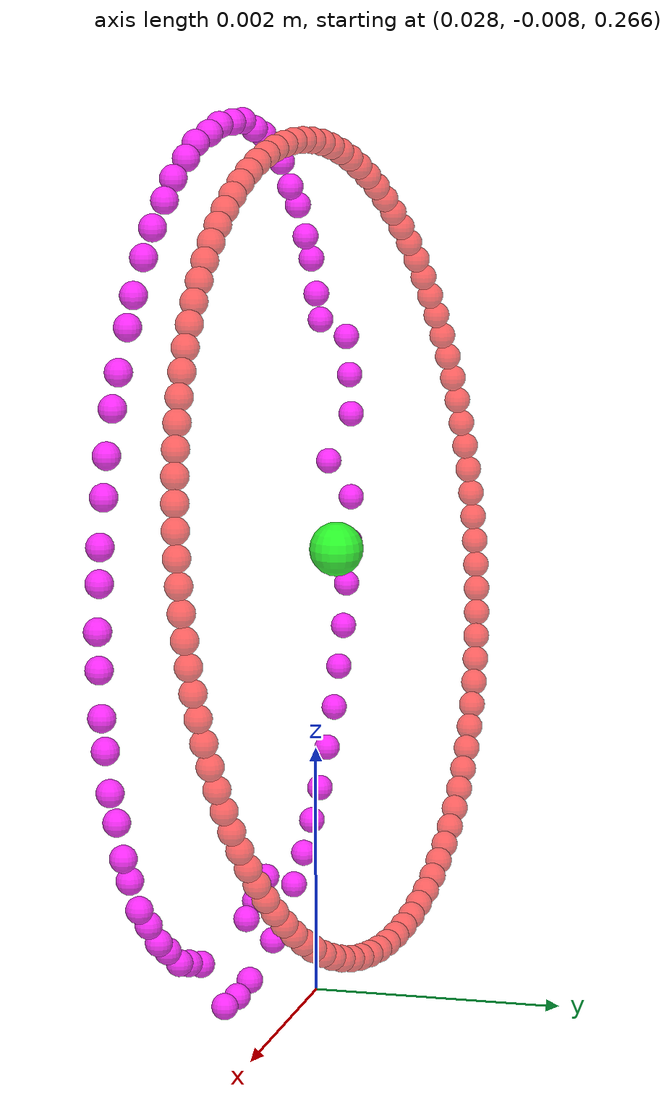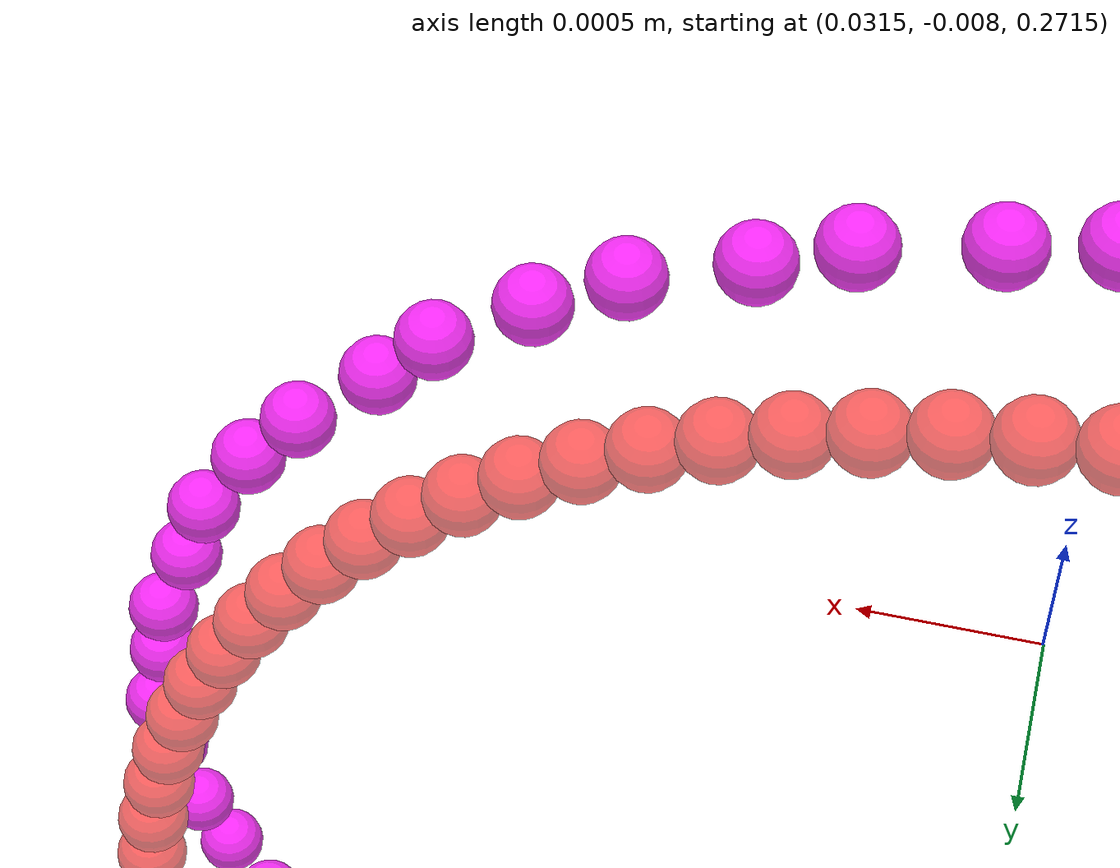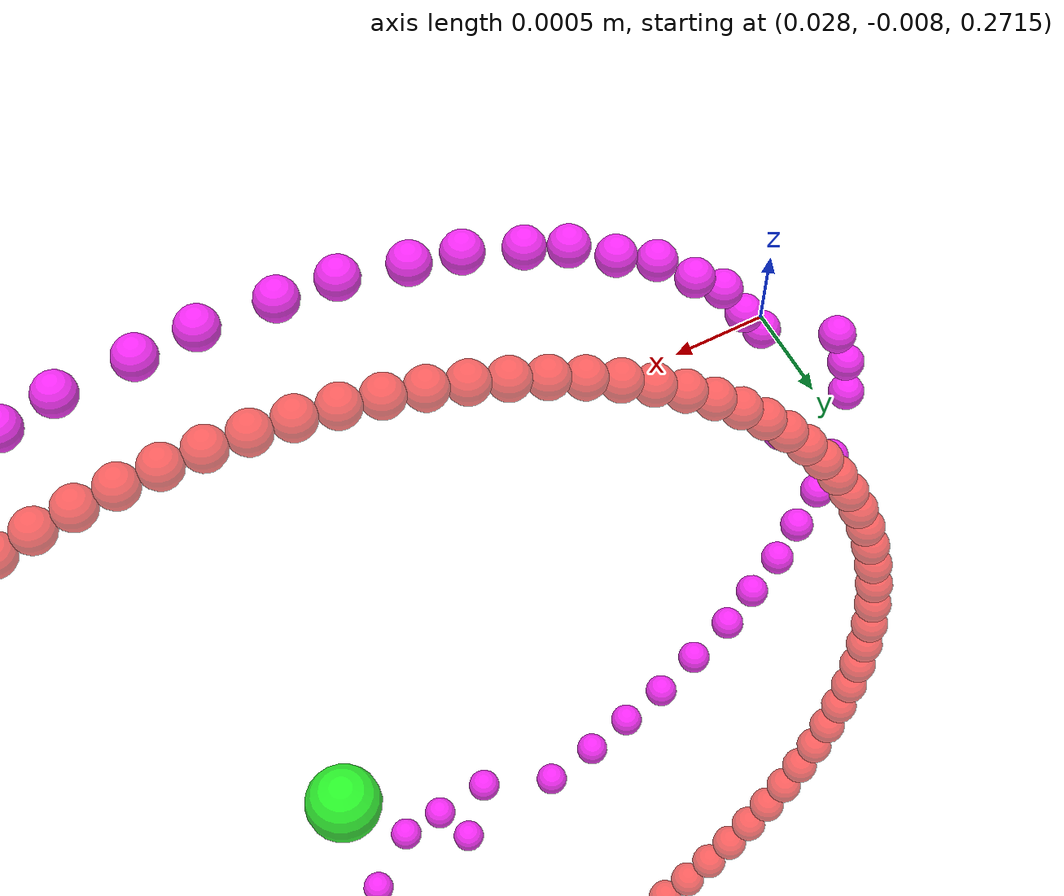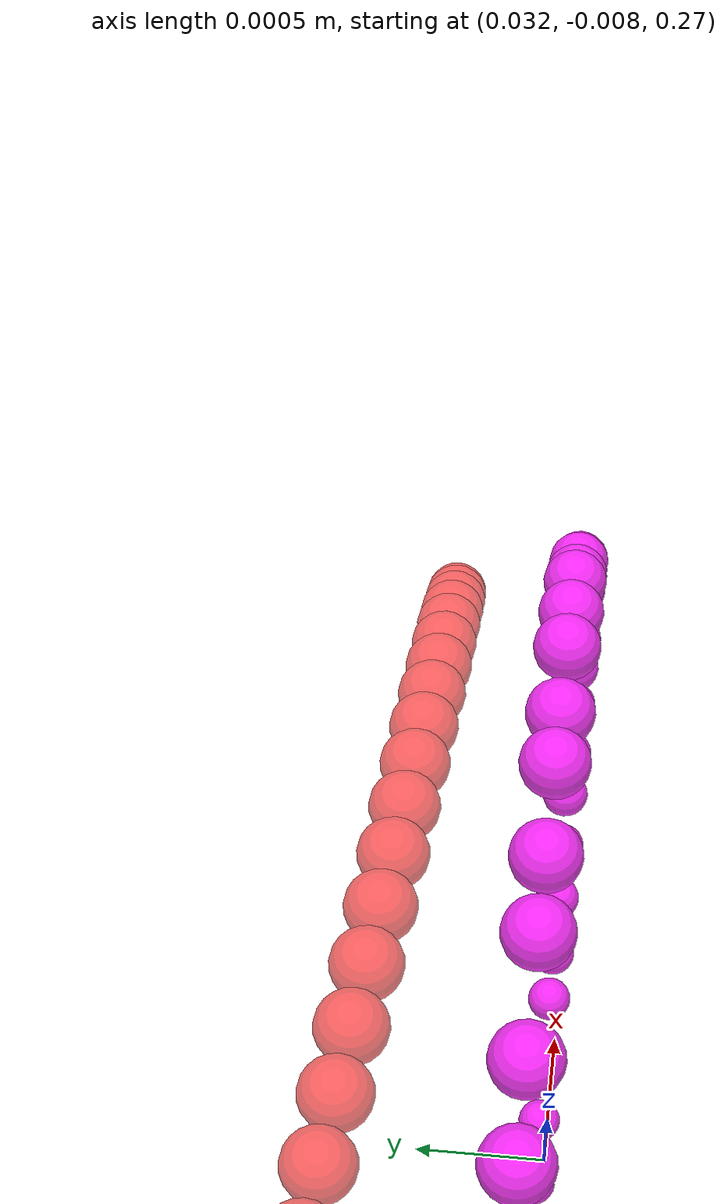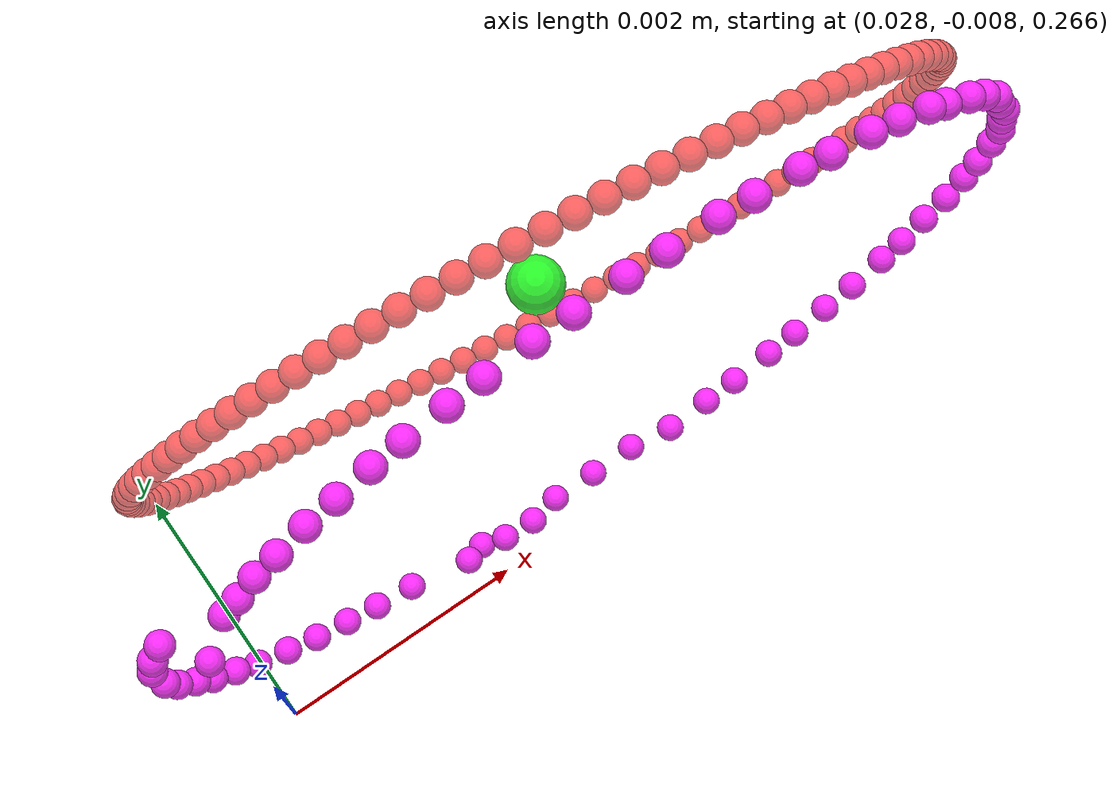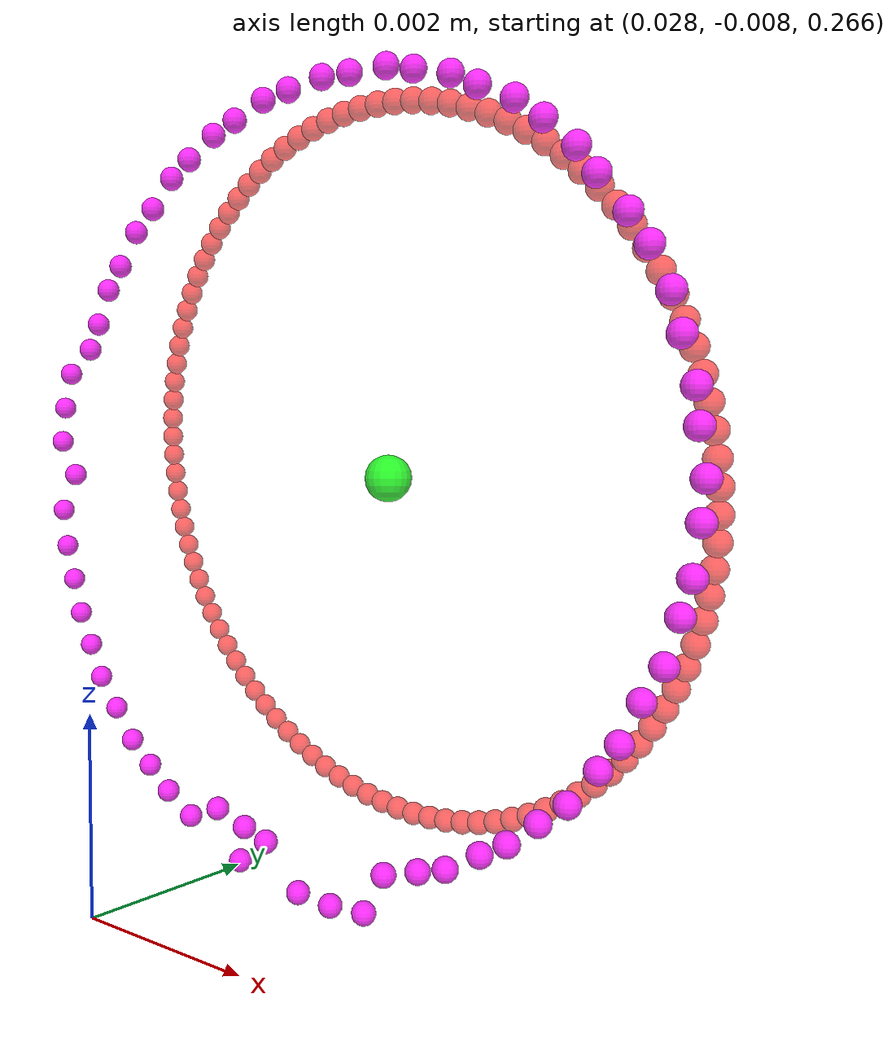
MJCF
<mujoco>
  <worldbody>
    <!-- LENS ANALYSIS VISUALIZATION -->
    <!-- Lens geometric center -->
    <body name="lens_center_marker" pos="0.030893 -0.007080 0.270276">
      <geom name="lens_center_sphere" type="sphere" size="0.0002" rgba="0 1 0 0.8" contype="0" conaffinity="0"/>
    </body>

    <!-- Raw trajectory points (100 points) - RED -->
    <body name="raw_trajectory_point_0" pos="0.030893 -0.007466 0.273251">
      <geom name="raw_traj_marker_0" type="sphere" size="0.0001" rgba="1 0 0 0.6" contype="0" conaffinity="0"/>
    </body>
    <body name="raw_trajectory_point_1" pos="0.031081 -0.007484 0.273243">
      <geom name="raw_traj_marker_1" type="sphere" size="0.0001" rgba="1 0 0 0.6" contype="0" conaffinity="0"/>
    </body>
    <body name="raw_trajectory_point_2" pos="0.031267 -0.007500 0.273223">
      <geom name="raw_traj_marker_2" type="sphere" size="0.0001" rgba="1 0 0 0.6" contype="0" conaffinity="0"/>
    </body>
    <body name="raw_trajectory_point_3" pos="0.031453 -0.007515 0.273192">
      <geom name="raw_traj_marker_3" type="sphere" size="0.0001" rgba="1 0 0 0.6" contype="0" conaffinity="0"/>
    </body>
    <body name="raw_trajectory_point_4" pos="0.031636 -0.007528 0.273148">
      <geom name="raw_traj_marker_4" type="sphere" size="0.0001" rgba="1 0 0 0.6" contype="0" conaffinity="0"/>
    </body>
    <body name="raw_trajectory_point_5" pos="0.031816 -0.007539 0.273094">
      <geom name="raw_traj_marker_5" type="sphere" size="0.0001" rgba="1 0 0 0.6" contype="0" conaffinity="0"/>
    </body>
    <body name="raw_trajectory_point_6" pos="0.031992 -0.007548 0.273028">
      <geom name="raw_traj_marker_6" type="sphere" size="0.0001" rgba="1 0 0 0.6" contype="0" conaffinity="0"/>
    </body>
    <body name="raw_trajectory_point_7" pos="0.032164 -0.007556 0.272952">
      <geom name="raw_traj_marker_7" type="sphere" size="0.0001" rgba="1 0 0 0.6" contype="0" conaffinity="0"/>
    </body>
    <body name="raw_trajectory_point_8" pos="0.032331 -0.007561 0.272865">
      <geom name="raw_traj_marker_8" type="sphere" size="0.0001" rgba="1 0 0 0.6" contype="0" conaffinity="0"/>
    </body>
    <body name="raw_trajectory_point_9" pos="0.032493 -0.007565 0.272768">
      <geom name="raw_traj_marker_9" type="sphere" size="0.0001" rgba="1 0 0 0.6" contype="0" conaffinity="0"/>
    </body>
    <body name="raw_trajectory_point_10" pos="0.032648 -0.007567 0.272661">
      <geom name="raw_traj_marker_10" type="sphere" size="0.0001" rgba="1 0 0 0.6" contype="0" conaffinity="0"/>
    </body>
    <body name="raw_trajectory_point_11" pos="0.032796 -0.007566 0.272544">
      <geom name="raw_traj_marker_11" type="sphere" size="0.0001" rgba="1 0 0 0.6" contype="0" conaffinity="0"/>
    </body>
    <body name="raw_trajectory_point_12" pos="0.032937 -0.007564 0.272419">
      <geom name="raw_traj_marker_12" type="sphere" size="0.0001" rgba="1 0 0 0.6" contype="0" conaffinity="0"/>
    </body>
    <body name="raw_trajectory_point_13" pos="0.033069 -0.007560 0.272285">
      <geom name="raw_traj_marker_13" type="sphere" size="0.0001" rgba="1 0 0 0.6" contype="0" conaffinity="0"/>
    </body>
    <body name="raw_trajectory_point_14" pos="0.033193 -0.007555 0.272143">
      <geom name="raw_traj_marker_14" type="sphere" size="0.0001" rgba="1 0 0 0.6" contype="0" conaffinity="0"/>
    </body>
    <body name="raw_trajectory_point_15" pos="0.033308 -0.007547 0.271994">
      <geom name="raw_traj_marker_15" type="sphere" size="0.0001" rgba="1 0 0 0.6" contype="0" conaffinity="0"/>
    </body>
    <body name="raw_trajectory_point_16" pos="0.033414 -0.007537 0.271838">
      <geom name="raw_traj_marker_16" type="sphere" size="0.0001" rgba="1 0 0 0.6" contype="0" conaffinity="0"/>
    </body>
    <body name="raw_trajectory_point_17" pos="0.033509 -0.007526 0.271676">
      <geom name="raw_traj_marker_17" type="sphere" size="0.0001" rgba="1 0 0 0.6" contype="0" conaffinity="0"/>
    </body>
    <body name="raw_trajectory_point_18" pos="0.033594 -0.007513 0.271508">
      <geom name="raw_traj_marker_18" type="sphere" size="0.0001" rgba="1 0 0 0.6" contype="0" conaffinity="0"/>
    </body>
    <body name="raw_trajectory_point_19" pos="0.033669 -0.007498 0.271336">
      <geom name="raw_traj_marker_19" type="sphere" size="0.0001" rgba="1 0 0 0.6" contype="0" conaffinity="0"/>
    </body>
    <body name="raw_trajectory_point_20" pos="0.033732 -0.007481 0.271159">
      <geom name="raw_traj_marker_20" type="sphere" size="0.0001" rgba="1 0 0 0.6" contype="0" conaffinity="0"/>
    </body>
    <body name="raw_trajectory_point_21" pos="0.033785 -0.007463 0.270979">
      <geom name="raw_traj_marker_21" type="sphere" size="0.0001" rgba="1 0 0 0.6" contype="0" conaffinity="0"/>
    </body>
    <body name="raw_trajectory_point_22" pos="0.033825 -0.007444 0.270796">
      <geom name="raw_traj_marker_22" type="sphere" size="0.0001" rgba="1 0 0 0.6" contype="0" conaffinity="0"/>
    </body>
    <body name="raw_trajectory_point_23" pos="0.033855 -0.007422 0.270611">
      <geom name="raw_traj_marker_23" type="sphere" size="0.0001" rgba="1 0 0 0.6" contype="0" conaffinity="0"/>
    </body>
    <body name="raw_trajectory_point_24" pos="0.033872 -0.007400 0.270425">
      <geom name="raw_traj_marker_24" type="sphere" size="0.0001" rgba="1 0 0 0.6" contype="0" conaffinity="0"/>
    </body>
    <body name="raw_trajectory_point_25" pos="0.033878 -0.007376 0.270238">
      <geom name="raw_traj_marker_25" type="sphere" size="0.0001" rgba="1 0 0 0.6" contype="0" conaffinity="0"/>
    </body>
    <body name="raw_trajectory_point_26" pos="0.033872 -0.007352 0.270051">
      <geom name="raw_traj_marker_26" type="sphere" size="0.0001" rgba="1 0 0 0.6" contype="0" conaffinity="0"/>
    </body>
    <body name="raw_trajectory_point_27" pos="0.033855 -0.007326 0.269865">
      <geom name="raw_traj_marker_27" type="sphere" size="0.0001" rgba="1 0 0 0.6" contype="0" conaffinity="0"/>
    </body>
    <body name="raw_trajectory_point_28" pos="0.033825 -0.007299 0.269681">
      <geom name="raw_traj_marker_28" type="sphere" size="0.0001" rgba="1 0 0 0.6" contype="0" conaffinity="0"/>
    </body>
    <body name="raw_trajectory_point_29" pos="0.033785 -0.007271 0.269499">
      <geom name="raw_traj_marker_29" type="sphere" size="0.0001" rgba="1 0 0 0.6" contype="0" conaffinity="0"/>
    </body>
    <body name="raw_trajectory_point_30" pos="0.033732 -0.007243 0.269321">
      <geom name="raw_traj_marker_30" type="sphere" size="0.0001" rgba="1 0 0 0.6" contype="0" conaffinity="0"/>
    </body>
    <body name="raw_trajectory_point_31" pos="0.033669 -0.007213 0.269145">
      <geom name="raw_traj_marker_31" type="sphere" size="0.0001" rgba="1 0 0 0.6" contype="0" conaffinity="0"/>
    </body>
    <body name="raw_trajectory_point_32" pos="0.033594 -0.007184 0.268975">
      <geom name="raw_traj_marker_32" type="sphere" size="0.0001" rgba="1 0 0 0.6" contype="0" conaffinity="0"/>
    </body>
    <body name="raw_trajectory_point_33" pos="0.033509 -0.007154 0.268809">
      <geom name="raw_traj_marker_33" type="sphere" size="0.0001" rgba="1 0 0 0.6" contype="0" conaffinity="0"/>
    </body>
    <body name="raw_trajectory_point_34" pos="0.033414 -0.007123 0.268650">
      <geom name="raw_traj_marker_34" type="sphere" size="0.0001" rgba="1 0 0 0.6" contype="0" conaffinity="0"/>
    </body>
    <body name="raw_trajectory_point_35" pos="0.033308 -0.007093 0.268497">
      <geom name="raw_traj_marker_35" type="sphere" size="0.0001" rgba="1 0 0 0.6" contype="0" conaffinity="0"/>
    </body>
    <body name="raw_trajectory_point_36" pos="0.033193 -0.007062 0.268350">
      <geom name="raw_traj_marker_36" type="sphere" size="0.0001" rgba="1 0 0 0.6" contype="0" conaffinity="0"/>
    </body>
    <body name="raw_trajectory_point_37" pos="0.033069 -0.007032 0.268212">
      <geom name="raw_traj_marker_37" type="sphere" size="0.0001" rgba="1 0 0 0.6" contype="0" conaffinity="0"/>
    </body>
    <body name="raw_trajectory_point_38" pos="0.032937 -0.007002 0.268081">
      <geom name="raw_traj_marker_38" type="sphere" size="0.0001" rgba="1 0 0 0.6" contype="0" conaffinity="0"/>
    </body>
    <body name="raw_trajectory_point_39" pos="0.032796 -0.006972 0.267960">
      <geom name="raw_traj_marker_39" type="sphere" size="0.0001" rgba="1 0 0 0.6" contype="0" conaffinity="0"/>
    </body>
    <body name="raw_trajectory_point_40" pos="0.032648 -0.006942 0.267847">
      <geom name="raw_traj_marker_40" type="sphere" size="0.0001" rgba="1 0 0 0.6" contype="0" conaffinity="0"/>
    </body>
    <body name="raw_trajectory_point_41" pos="0.032493 -0.006913 0.267744">
      <geom name="raw_traj_marker_41" type="sphere" size="0.0001" rgba="1 0 0 0.6" contype="0" conaffinity="0"/>
    </body>
    <body name="raw_trajectory_point_42" pos="0.032331 -0.006885 0.267651">
      <geom name="raw_traj_marker_42" type="sphere" size="0.0001" rgba="1 0 0 0.6" contype="0" conaffinity="0"/>
    </body>
    <body name="raw_trajectory_point_43" pos="0.032164 -0.006857 0.267568">
      <geom name="raw_traj_marker_43" type="sphere" size="0.0001" rgba="1 0 0 0.6" contype="0" conaffinity="0"/>
    </body>
    <body name="raw_trajectory_point_44" pos="0.031992 -0.006830 0.267496">
      <geom name="raw_traj_marker_44" type="sphere" size="0.0001" rgba="1 0 0 0.6" contype="0" conaffinity="0"/>
    </body>
    <body name="raw_trajectory_point_45" pos="0.031816 -0.006805 0.267435">
      <geom name="raw_traj_marker_45" type="sphere" size="0.0001" rgba="1 0 0 0.6" contype="0" conaffinity="0"/>
    </body>
    <body name="raw_trajectory_point_46" pos="0.031636 -0.006780 0.267385">
      <geom name="raw_traj_marker_46" type="sphere" size="0.0001" rgba="1 0 0 0.6" contype="0" conaffinity="0"/>
    </body>
    <body name="raw_trajectory_point_47" pos="0.031453 -0.006756 0.267347">
      <geom name="raw_traj_marker_47" type="sphere" size="0.0001" rgba="1 0 0 0.6" contype="0" conaffinity="0"/>
    </body>
    <body name="raw_trajectory_point_48" pos="0.031267 -0.006734 0.267320">
      <geom name="raw_traj_marker_48" type="sphere" size="0.0001" rgba="1 0 0 0.6" contype="0" conaffinity="0"/>
    </body>
    <body name="raw_trajectory_point_49" pos="0.031081 -0.006713 0.267305">
      <geom name="raw_traj_marker_49" type="sphere" size="0.0001" rgba="1 0 0 0.6" contype="0" conaffinity="0"/>
    </body>
    <body name="raw_trajectory_point_50" pos="0.030893 -0.006694 0.267301">
      <geom name="raw_traj_marker_50" type="sphere" size="0.0001" rgba="1 0 0 0.6" contype="0" conaffinity="0"/>
    </body>
    <body name="raw_trajectory_point_51" pos="0.030706 -0.006676 0.267310">
      <geom name="raw_traj_marker_51" type="sphere" size="0.0001" rgba="1 0 0 0.6" contype="0" conaffinity="0"/>
    </body>
    <body name="raw_trajectory_point_52" pos="0.030519 -0.006660 0.267330">
      <geom name="raw_traj_marker_52" type="sphere" size="0.0001" rgba="1 0 0 0.6" contype="0" conaffinity="0"/>
    </body>
    <body name="raw_trajectory_point_53" pos="0.030334 -0.006645 0.267361">
      <geom name="raw_traj_marker_53" type="sphere" size="0.0001" rgba="1 0 0 0.6" contype="0" conaffinity="0"/>
    </body>
    <body name="raw_trajectory_point_54" pos="0.030151 -0.006633 0.267404">
      <geom name="raw_traj_marker_54" type="sphere" size="0.0001" rgba="1 0 0 0.6" contype="0" conaffinity="0"/>
    </body>
    <body name="raw_trajectory_point_55" pos="0.029971 -0.006621 0.267459">
      <geom name="raw_traj_marker_55" type="sphere" size="0.0001" rgba="1 0 0 0.6" contype="0" conaffinity="0"/>
    </body>
    <body name="raw_trajectory_point_56" pos="0.029794 -0.006612 0.267524">
      <geom name="raw_traj_marker_56" type="sphere" size="0.0001" rgba="1 0 0 0.6" contype="0" conaffinity="0"/>
    </body>
    <body name="raw_trajectory_point_57" pos="0.029622 -0.006605 0.267601">
      <geom name="raw_traj_marker_57" type="sphere" size="0.0001" rgba="1 0 0 0.6" contype="0" conaffinity="0"/>
    </body>
    <body name="raw_trajectory_point_58" pos="0.029455 -0.006599 0.267688">
      <geom name="raw_traj_marker_58" type="sphere" size="0.0001" rgba="1 0 0 0.6" contype="0" conaffinity="0"/>
    </body>
    <body name="raw_trajectory_point_59" pos="0.029294 -0.006595 0.267785">
      <geom name="raw_traj_marker_59" type="sphere" size="0.0001" rgba="1 0 0 0.6" contype="0" conaffinity="0"/>
    </body>
    <body name="raw_trajectory_point_60" pos="0.029139 -0.006594 0.267892">
      <geom name="raw_traj_marker_60" type="sphere" size="0.0001" rgba="1 0 0 0.6" contype="0" conaffinity="0"/>
    </body>
    <body name="raw_trajectory_point_61" pos="0.028991 -0.006594 0.268009">
      <geom name="raw_traj_marker_61" type="sphere" size="0.0001" rgba="1 0 0 0.6" contype="0" conaffinity="0"/>
    </body>
    <body name="raw_trajectory_point_62" pos="0.028850 -0.006596 0.268134">
      <geom name="raw_traj_marker_62" type="sphere" size="0.0001" rgba="1 0 0 0.6" contype="0" conaffinity="0"/>
    </body>
    <body name="raw_trajectory_point_63" pos="0.028717 -0.006600 0.268268">
      <geom name="raw_traj_marker_63" type="sphere" size="0.0001" rgba="1 0 0 0.6" contype="0" conaffinity="0"/>
    </body>
    <body name="raw_trajectory_point_64" pos="0.028593 -0.006606 0.268410">
      <geom name="raw_traj_marker_64" type="sphere" size="0.0001" rgba="1 0 0 0.6" contype="0" conaffinity="0"/>
    </body>
    <body name="raw_trajectory_point_65" pos="0.028478 -0.006614 0.268559">
      <geom name="raw_traj_marker_65" type="sphere" size="0.0001" rgba="1 0 0 0.6" contype="0" conaffinity="0"/>
    </body>
    <body name="raw_trajectory_point_66" pos="0.028373 -0.006623 0.268715">
      <geom name="raw_traj_marker_66" type="sphere" size="0.0001" rgba="1 0 0 0.6" contype="0" conaffinity="0"/>
    </body>
    <body name="raw_trajectory_point_67" pos="0.028277 -0.006635 0.268877">
      <geom name="raw_traj_marker_67" type="sphere" size="0.0001" rgba="1 0 0 0.6" contype="0" conaffinity="0"/>
    </body>
    <body name="raw_trajectory_point_68" pos="0.028192 -0.006648 0.269044">
      <geom name="raw_traj_marker_68" type="sphere" size="0.0001" rgba="1 0 0 0.6" contype="0" conaffinity="0"/>
    </body>
    <body name="raw_trajectory_point_69" pos="0.028118 -0.006663 0.269217">
      <geom name="raw_traj_marker_69" type="sphere" size="0.0001" rgba="1 0 0 0.6" contype="0" conaffinity="0"/>
    </body>
    <body name="raw_trajectory_point_70" pos="0.028054 -0.006679 0.269394">
      <geom name="raw_traj_marker_70" type="sphere" size="0.0001" rgba="1 0 0 0.6" contype="0" conaffinity="0"/>
    </body>
    <body name="raw_trajectory_point_71" pos="0.028002 -0.006697 0.269574">
      <geom name="raw_traj_marker_71" type="sphere" size="0.0001" rgba="1 0 0 0.6" contype="0" conaffinity="0"/>
    </body>
    <body name="raw_trajectory_point_72" pos="0.027961 -0.006717 0.269757">
      <geom name="raw_traj_marker_72" type="sphere" size="0.0001" rgba="1 0 0 0.6" contype="0" conaffinity="0"/>
    </body>
    <body name="raw_trajectory_point_73" pos="0.027932 -0.006738 0.269942">
      <geom name="raw_traj_marker_73" type="sphere" size="0.0001" rgba="1 0 0 0.6" contype="0" conaffinity="0"/>
    </body>
    <body name="raw_trajectory_point_74" pos="0.027914 -0.006760 0.270128">
      <geom name="raw_traj_marker_74" type="sphere" size="0.0001" rgba="1 0 0 0.6" contype="0" conaffinity="0"/>
    </body>
    <body name="raw_trajectory_point_75" pos="0.027908 -0.006784 0.270315">
      <geom name="raw_traj_marker_75" type="sphere" size="0.0001" rgba="1 0 0 0.6" contype="0" conaffinity="0"/>
    </body>
    <body name="raw_trajectory_point_76" pos="0.027914 -0.006809 0.270502">
      <geom name="raw_traj_marker_76" type="sphere" size="0.0001" rgba="1 0 0 0.6" contype="0" conaffinity="0"/>
    </body>
    <body name="raw_trajectory_point_77" pos="0.027932 -0.006835 0.270687">
      <geom name="raw_traj_marker_77" type="sphere" size="0.0001" rgba="1 0 0 0.6" contype="0" conaffinity="0"/>
    </body>
    <body name="raw_trajectory_point_78" pos="0.027961 -0.006862 0.270872">
      <geom name="raw_traj_marker_78" type="sphere" size="0.0001" rgba="1 0 0 0.6" contype="0" conaffinity="0"/>
    </body>
    <body name="raw_trajectory_point_79" pos="0.028002 -0.006889 0.271054">
      <geom name="raw_traj_marker_79" type="sphere" size="0.0001" rgba="1 0 0 0.6" contype="0" conaffinity="0"/>
    </body>
    <body name="raw_trajectory_point_80" pos="0.028054 -0.006918 0.271232">
      <geom name="raw_traj_marker_80" type="sphere" size="0.0001" rgba="1 0 0 0.6" contype="0" conaffinity="0"/>
    </body>
    <body name="raw_trajectory_point_81" pos="0.028118 -0.006947 0.271407">
      <geom name="raw_traj_marker_81" type="sphere" size="0.0001" rgba="1 0 0 0.6" contype="0" conaffinity="0"/>
    </body>
    <body name="raw_trajectory_point_82" pos="0.028192 -0.006977 0.271578">
      <geom name="raw_traj_marker_82" type="sphere" size="0.0001" rgba="1 0 0 0.6" contype="0" conaffinity="0"/>
    </body>
    <body name="raw_trajectory_point_83" pos="0.028277 -0.007007 0.271743">
      <geom name="raw_traj_marker_83" type="sphere" size="0.0001" rgba="1 0 0 0.6" contype="0" conaffinity="0"/>
    </body>
    <body name="raw_trajectory_point_84" pos="0.028373 -0.007037 0.271903">
      <geom name="raw_traj_marker_84" type="sphere" size="0.0001" rgba="1 0 0 0.6" contype="0" conaffinity="0"/>
    </body>
    <body name="raw_trajectory_point_85" pos="0.028478 -0.007067 0.272056">
      <geom name="raw_traj_marker_85" type="sphere" size="0.0001" rgba="1 0 0 0.6" contype="0" conaffinity="0"/>
    </body>
    <body name="raw_trajectory_point_86" pos="0.028593 -0.007098 0.272202">
      <geom name="raw_traj_marker_86" type="sphere" size="0.0001" rgba="1 0 0 0.6" contype="0" conaffinity="0"/>
    </body>
    <body name="raw_trajectory_point_87" pos="0.028717 -0.007128 0.272341">
      <geom name="raw_traj_marker_87" type="sphere" size="0.0001" rgba="1 0 0 0.6" contype="0" conaffinity="0"/>
    </body>
    <body name="raw_trajectory_point_88" pos="0.028850 -0.007159 0.272471">
      <geom name="raw_traj_marker_88" type="sphere" size="0.0001" rgba="1 0 0 0.6" contype="0" conaffinity="0"/>
    </body>
    <body name="raw_trajectory_point_89" pos="0.028991 -0.007189 0.272593">
      <geom name="raw_traj_marker_89" type="sphere" size="0.0001" rgba="1 0 0 0.6" contype="0" conaffinity="0"/>
    </body>
    <body name="raw_trajectory_point_90" pos="0.029139 -0.007218 0.272706">
      <geom name="raw_traj_marker_90" type="sphere" size="0.0001" rgba="1 0 0 0.6" contype="0" conaffinity="0"/>
    </body>
    <body name="raw_trajectory_point_91" pos="0.029294 -0.007247 0.272809">
      <geom name="raw_traj_marker_91" type="sphere" size="0.0001" rgba="1 0 0 0.6" contype="0" conaffinity="0"/>
    </body>
    <body name="raw_trajectory_point_92" pos="0.029455 -0.007276 0.272902">
      <geom name="raw_traj_marker_92" type="sphere" size="0.0001" rgba="1 0 0 0.6" contype="0" conaffinity="0"/>
    </body>
    <body name="raw_trajectory_point_93" pos="0.029622 -0.007303 0.272985">
      <geom name="raw_traj_marker_93" type="sphere" size="0.0001" rgba="1 0 0 0.6" contype="0" conaffinity="0"/>
    </body>
    <body name="raw_trajectory_point_94" pos="0.029794 -0.007330 0.273057">
      <geom name="raw_traj_marker_94" type="sphere" size="0.0001" rgba="1 0 0 0.6" contype="0" conaffinity="0"/>
    </body>
    <body name="raw_trajectory_point_95" pos="0.029971 -0.007356 0.273118">
      <geom name="raw_traj_marker_95" type="sphere" size="0.0001" rgba="1 0 0 0.6" contype="0" conaffinity="0"/>
    </body>
    <body name="raw_trajectory_point_96" pos="0.030151 -0.007380 0.273168">
      <geom name="raw_traj_marker_96" type="sphere" size="0.0001" rgba="1 0 0 0.6" contype="0" conaffinity="0"/>
    </body>
    <body name="raw_trajectory_point_97" pos="0.030334 -0.007404 0.273206">
      <geom name="raw_traj_marker_97" type="sphere" size="0.0001" rgba="1 0 0 0.6" contype="0" conaffinity="0"/>
    </body>
    <body name="raw_trajectory_point_98" pos="0.030519 -0.007426 0.273233">
      <geom name="raw_traj_marker_98" type="sphere" size="0.0001" rgba="1 0 0 0.6" contype="0" conaffinity="0"/>
    </body>
    <body name="raw_trajectory_point_99" pos="0.030706 -0.007447 0.273248">
      <geom name="raw_traj_marker_99" type="sphere" size="0.0001" rgba="1 0 0 0.6" contype="0" conaffinity="0"/>
    </body>

    <!-- Projected trajectory points (100 points) - PURPLE -->
    <body name="proj_trajectory_point_0" pos="0.030900 -0.007950 0.273375">
      <geom name="proj_traj_marker_0" type="sphere" size="0.0001" rgba="1 0 1 0.8" contype="0" conaffinity="0"/>
    </body>
    <body name="proj_trajectory_point_1" pos="0.031175 -0.007950 0.273350">
      <geom name="proj_traj_marker_1" type="sphere" size="0.0001" rgba="1 0 1 0.8" contype="0" conaffinity="0"/>
    </body>
    <body name="proj_trajectory_point_2" pos="0.031175 -0.007950 0.273350">
      <geom name="proj_traj_marker_2" type="sphere" size="0.0001" rgba="1 0 1 0.8" contype="0" conaffinity="0"/>
    </body>
    <body name="proj_trajectory_point_3" pos="0.031525 -0.007950 0.273325">
      <geom name="proj_traj_marker_3" type="sphere" size="0.0001" rgba="1 0 1 0.8" contype="0" conaffinity="0"/>
    </body>
    <body name="proj_trajectory_point_4" pos="0.031775 -0.007950 0.273250">
      <geom name="proj_traj_marker_4" type="sphere" size="0.0001" rgba="1 0 1 0.8" contype="0" conaffinity="0"/>
    </body>
    <body name="proj_trajectory_point_5" pos="0.031775 -0.007950 0.273250">
      <geom name="proj_traj_marker_5" type="sphere" size="0.0001" rgba="1 0 1 0.8" contype="0" conaffinity="0"/>
    </body>
    <body name="proj_trajectory_point_6" pos="0.032100 -0.007950 0.273150">
      <geom name="proj_traj_marker_6" type="sphere" size="0.0001" rgba="1 0 1 0.8" contype="0" conaffinity="0"/>
    </body>
    <body name="proj_trajectory_point_7" pos="0.032325 -0.007950 0.273025">
      <geom name="proj_traj_marker_7" type="sphere" size="0.0001" rgba="1 0 1 0.8" contype="0" conaffinity="0"/>
    </body>
    <body name="proj_trajectory_point_8" pos="0.032325 -0.007950 0.273025">
      <geom name="proj_traj_marker_8" type="sphere" size="0.0001" rgba="1 0 1 0.8" contype="0" conaffinity="0"/>
    </body>
    <body name="proj_trajectory_point_9" pos="0.032625 -0.007950 0.272875">
      <geom name="proj_traj_marker_9" type="sphere" size="0.0001" rgba="1 0 1 0.8" contype="0" conaffinity="0"/>
    </body>
    <body name="proj_trajectory_point_10" pos="0.032850 -0.007950 0.272700">
      <geom name="proj_traj_marker_10" type="sphere" size="0.0001" rgba="1 0 1 0.8" contype="0" conaffinity="0"/>
    </body>
    <body name="proj_trajectory_point_11" pos="0.032850 -0.007950 0.272700">
      <geom name="proj_traj_marker_11" type="sphere" size="0.0001" rgba="1 0 1 0.8" contype="0" conaffinity="0"/>
    </body>
    <body name="proj_trajectory_point_12" pos="0.033100 -0.007950 0.272475">
      <geom name="proj_traj_marker_12" type="sphere" size="0.0001" rgba="1 0 1 0.8" contype="0" conaffinity="0"/>
    </body>
    <body name="proj_trajectory_point_13" pos="0.033250 -0.007950 0.272275">
      <geom name="proj_traj_marker_13" type="sphere" size="0.0001" rgba="1 0 1 0.8" contype="0" conaffinity="0"/>
    </body>
    <body name="proj_trajectory_point_14" pos="0.033250 -0.007950 0.272275">
      <geom name="proj_traj_marker_14" type="sphere" size="0.0001" rgba="1 0 1 0.8" contype="0" conaffinity="0"/>
    </body>
    <body name="proj_trajectory_point_15" pos="0.033475 -0.007950 0.272000">
      <geom name="proj_traj_marker_15" type="sphere" size="0.0001" rgba="1 0 1 0.8" contype="0" conaffinity="0"/>
    </body>
    <body name="proj_trajectory_point_16" pos="0.033475 -0.007950 0.272000">
      <geom name="proj_traj_marker_16" type="sphere" size="0.0001" rgba="1 0 1 0.8" contype="0" conaffinity="0"/>
    </body>
    <body name="proj_trajectory_point_17" pos="0.033625 -0.007950 0.271775">
      <geom name="proj_traj_marker_17" type="sphere" size="0.0001" rgba="1 0 1 0.8" contype="0" conaffinity="0"/>
    </body>
    <body name="proj_trajectory_point_18" pos="0.033775 -0.007950 0.271475">
      <geom name="proj_traj_marker_18" type="sphere" size="0.0001" rgba="1 0 1 0.8" contype="0" conaffinity="0"/>
    </body>
    <body name="proj_trajectory_point_19" pos="0.033775 -0.007950 0.271475">
      <geom name="proj_traj_marker_19" type="sphere" size="0.0001" rgba="1 0 1 0.8" contype="0" conaffinity="0"/>
    </body>
    <body name="proj_trajectory_point_20" pos="0.033850 -0.007950 0.271200">
      <geom name="proj_traj_marker_20" type="sphere" size="0.0001" rgba="1 0 1 0.8" contype="0" conaffinity="0"/>
    </body>
    <body name="proj_trajectory_point_21" pos="0.033950 -0.007950 0.270875">
      <geom name="proj_traj_marker_21" type="sphere" size="0.0001" rgba="1 0 1 0.8" contype="0" conaffinity="0"/>
    </body>
    <body name="proj_trajectory_point_22" pos="0.033950 -0.007950 0.270875">
      <geom name="proj_traj_marker_22" type="sphere" size="0.0001" rgba="1 0 1 0.8" contype="0" conaffinity="0"/>
    </body>
    <body name="proj_trajectory_point_23" pos="0.033975 -0.007950 0.270625">
      <geom name="proj_traj_marker_23" type="sphere" size="0.0001" rgba="1 0 1 0.8" contype="0" conaffinity="0"/>
    </body>
    <body name="proj_trajectory_point_24" pos="0.034025 -0.007950 0.270300">
      <geom name="proj_traj_marker_24" type="sphere" size="0.0001" rgba="1 0 1 0.8" contype="0" conaffinity="0"/>
    </body>
    <body name="proj_trajectory_point_25" pos="0.034025 -0.007950 0.270300">
      <geom name="proj_traj_marker_25" type="sphere" size="0.0001" rgba="1 0 1 0.8" contype="0" conaffinity="0"/>
    </body>
    <body name="proj_trajectory_point_26" pos="0.034000 -0.007950 0.270025">
      <geom name="proj_traj_marker_26" type="sphere" size="0.0001" rgba="1 0 1 0.8" contype="0" conaffinity="0"/>
    </body>
    <body name="proj_trajectory_point_27" pos="0.033950 -0.007950 0.269675">
      <geom name="proj_traj_marker_27" type="sphere" size="0.0001" rgba="1 0 1 0.8" contype="0" conaffinity="0"/>
    </body>
    <body name="proj_trajectory_point_28" pos="0.033950 -0.007950 0.269675">
      <geom name="proj_traj_marker_28" type="sphere" size="0.0001" rgba="1 0 1 0.8" contype="0" conaffinity="0"/>
    </body>
    <body name="proj_trajectory_point_29" pos="0.033875 -0.007950 0.269425">
      <geom name="proj_traj_marker_29" type="sphere" size="0.0001" rgba="1 0 1 0.8" contype="0" conaffinity="0"/>
    </body>
    <body name="proj_trajectory_point_30" pos="0.033875 -0.007950 0.269425">
      <geom name="proj_traj_marker_30" type="sphere" size="0.0001" rgba="1 0 1 0.8" contype="0" conaffinity="0"/>
    </body>
    <body name="proj_trajectory_point_31" pos="0.033775 -0.007950 0.269100">
      <geom name="proj_traj_marker_31" type="sphere" size="0.0001" rgba="1 0 1 0.8" contype="0" conaffinity="0"/>
    </body>
    <body name="proj_trajectory_point_32" pos="0.033625 -0.007950 0.268850">
      <geom name="proj_traj_marker_32" type="sphere" size="0.0001" rgba="1 0 1 0.8" contype="0" conaffinity="0"/>
    </body>
    <body name="proj_trajectory_point_33" pos="0.033625 -0.007950 0.268850">
      <geom name="proj_traj_marker_33" type="sphere" size="0.0001" rgba="1 0 1 0.8" contype="0" conaffinity="0"/>
    </body>
    <body name="proj_trajectory_point_34" pos="0.033475 -0.007950 0.268550">
      <geom name="proj_traj_marker_34" type="sphere" size="0.0001" rgba="1 0 1 0.8" contype="0" conaffinity="0"/>
    </body>
    <body name="proj_trajectory_point_35" pos="0.033325 -0.007950 0.268350">
      <geom name="proj_traj_marker_35" type="sphere" size="0.0001" rgba="1 0 1 0.8" contype="0" conaffinity="0"/>
    </body>
    <body name="proj_trajectory_point_36" pos="0.033325 -0.007950 0.268350">
      <geom name="proj_traj_marker_36" type="sphere" size="0.0001" rgba="1 0 1 0.8" contype="0" conaffinity="0"/>
    </body>
    <body name="proj_trajectory_point_37" pos="0.033100 -0.007950 0.268075">
      <geom name="proj_traj_marker_37" type="sphere" size="0.0001" rgba="1 0 1 0.8" contype="0" conaffinity="0"/>
    </body>
    <body name="proj_trajectory_point_38" pos="0.033100 -0.007950 0.268075">
      <geom name="proj_traj_marker_38" type="sphere" size="0.0001" rgba="1 0 1 0.8" contype="0" conaffinity="0"/>
    </body>
    <body name="proj_trajectory_point_39" pos="0.032875 -0.007950 0.267900">
      <geom name="proj_traj_marker_39" type="sphere" size="0.0001" rgba="1 0 1 0.8" contype="0" conaffinity="0"/>
    </body>
    <body name="proj_trajectory_point_40" pos="0.032625 -0.007950 0.267700">
      <geom name="proj_traj_marker_40" type="sphere" size="0.0001" rgba="1 0 1 0.8" contype="0" conaffinity="0"/>
    </body>
    <body name="proj_trajectory_point_41" pos="0.032625 -0.007950 0.267700">
      <geom name="proj_traj_marker_41" type="sphere" size="0.0001" rgba="1 0 1 0.8" contype="0" conaffinity="0"/>
    </body>
    <body name="proj_trajectory_point_42" pos="0.032400 -0.007950 0.267575">
      <geom name="proj_traj_marker_42" type="sphere" size="0.0001" rgba="1 0 1 0.8" contype="0" conaffinity="0"/>
    </body>
    <body name="proj_trajectory_point_43" pos="0.032100 -0.007950 0.267400">
      <geom name="proj_traj_marker_43" type="sphere" size="0.0001" rgba="1 0 1 0.8" contype="0" conaffinity="0"/>
    </body>
    <body name="proj_trajectory_point_44" pos="0.032100 -0.007950 0.267400">
      <geom name="proj_traj_marker_44" type="sphere" size="0.0001" rgba="1 0 1 0.8" contype="0" conaffinity="0"/>
    </body>
    <body name="proj_trajectory_point_45" pos="0.031850 -0.007950 0.267325">
      <geom name="proj_traj_marker_45" type="sphere" size="0.0001" rgba="1 0 1 0.8" contype="0" conaffinity="0"/>
    </body>
    <body name="proj_trajectory_point_46" pos="0.031525 -0.007950 0.267225">
      <geom name="proj_traj_marker_46" type="sphere" size="0.0001" rgba="1 0 1 0.8" contype="0" conaffinity="0"/>
    </body>
    <body name="proj_trajectory_point_47" pos="0.031525 -0.007950 0.267225">
      <geom name="proj_traj_marker_47" type="sphere" size="0.0001" rgba="1 0 1 0.8" contype="0" conaffinity="0"/>
    </body>
    <body name="proj_trajectory_point_48" pos="0.031250 -0.007850 0.266825">
      <geom name="proj_traj_marker_48" type="sphere" size="0.0001" rgba="1 0 1 0.8" contype="0" conaffinity="0"/>
    </body>
    <body name="proj_trajectory_point_49" pos="0.031250 -0.007850 0.266825">
      <geom name="proj_traj_marker_49" type="sphere" size="0.0001" rgba="1 0 1 0.8" contype="0" conaffinity="0"/>
    </body>
    <body name="proj_trajectory_point_50" pos="0.030900 -0.007850 0.266800">
      <geom name="proj_traj_marker_50" type="sphere" size="0.0001" rgba="1 0 1 0.8" contype="0" conaffinity="0"/>
    </body>
    <body name="proj_trajectory_point_51" pos="0.030550 -0.007850 0.266825">
      <geom name="proj_traj_marker_51" type="sphere" size="0.0001" rgba="1 0 1 0.8" contype="0" conaffinity="0"/>
    </body>
    <body name="proj_trajectory_point_52" pos="0.030550 -0.007850 0.266825">
      <geom name="proj_traj_marker_52" type="sphere" size="0.0001" rgba="1 0 1 0.8" contype="0" conaffinity="0"/>
    </body>
    <body name="proj_trajectory_point_53" pos="0.030275 -0.007950 0.267225">
      <geom name="proj_traj_marker_53" type="sphere" size="0.0001" rgba="1 0 1 0.8" contype="0" conaffinity="0"/>
    </body>
    <body name="proj_trajectory_point_54" pos="0.030025 -0.007950 0.267300">
      <geom name="proj_traj_marker_54" type="sphere" size="0.0001" rgba="1 0 1 0.8" contype="0" conaffinity="0"/>
    </body>
    <body name="proj_trajectory_point_55" pos="0.029875 -0.007850 0.266950">
      <geom name="proj_traj_marker_55" type="sphere" size="0.0001" rgba="1 0 1 0.8" contype="0" conaffinity="0"/>
    </body>
    <body name="proj_trajectory_point_56" pos="0.029700 -0.007950 0.267400">
      <geom name="proj_traj_marker_56" type="sphere" size="0.0001" rgba="1 0 1 0.8" contype="0" conaffinity="0"/>
    </body>
    <body name="proj_trajectory_point_57" pos="0.029250 -0.007850 0.267225">
      <geom name="proj_traj_marker_57" type="sphere" size="0.0001" rgba="1 0 1 0.8" contype="0" conaffinity="0"/>
    </body>
    <body name="proj_trajectory_point_58" pos="0.029250 -0.007850 0.267225">
      <geom name="proj_traj_marker_58" type="sphere" size="0.0001" rgba="1 0 1 0.8" contype="0" conaffinity="0"/>
    </body>
    <body name="proj_trajectory_point_59" pos="0.028950 -0.007850 0.267400">
      <geom name="proj_traj_marker_59" type="sphere" size="0.0001" rgba="1 0 1 0.8" contype="0" conaffinity="0"/>
    </body>
    <body name="proj_trajectory_point_60" pos="0.028700 -0.007850 0.267600">
      <geom name="proj_traj_marker_60" type="sphere" size="0.0001" rgba="1 0 1 0.8" contype="0" conaffinity="0"/>
    </body>
    <body name="proj_trajectory_point_61" pos="0.028700 -0.007850 0.267600">
      <geom name="proj_traj_marker_61" type="sphere" size="0.0001" rgba="1 0 1 0.8" contype="0" conaffinity="0"/>
    </body>
    <body name="proj_trajectory_point_62" pos="0.028450 -0.007850 0.267800">
      <geom name="proj_traj_marker_62" type="sphere" size="0.0001" rgba="1 0 1 0.8" contype="0" conaffinity="0"/>
    </body>
    <body name="proj_trajectory_point_63" pos="0.028225 -0.007850 0.268075">
      <geom name="proj_traj_marker_63" type="sphere" size="0.0001" rgba="1 0 1 0.8" contype="0" conaffinity="0"/>
    </body>
    <body name="proj_trajectory_point_64" pos="0.028225 -0.007850 0.268075">
      <geom name="proj_traj_marker_64" type="sphere" size="0.0001" rgba="1 0 1 0.8" contype="0" conaffinity="0"/>
    </body>
    <body name="proj_trajectory_point_65" pos="0.028000 -0.007850 0.268350">
      <geom name="proj_traj_marker_65" type="sphere" size="0.0001" rgba="1 0 1 0.8" contype="0" conaffinity="0"/>
    </body>
    <body name="proj_trajectory_point_66" pos="0.028000 -0.007850 0.268350">
      <geom name="proj_traj_marker_66" type="sphere" size="0.0001" rgba="1 0 1 0.8" contype="0" conaffinity="0"/>
    </body>
    <body name="proj_trajectory_point_67" pos="0.027850 -0.007850 0.268650">
      <geom name="proj_traj_marker_67" type="sphere" size="0.0001" rgba="1 0 1 0.8" contype="0" conaffinity="0"/>
    </body>
    <body name="proj_trajectory_point_68" pos="0.027700 -0.007850 0.268950">
      <geom name="proj_traj_marker_68" type="sphere" size="0.0001" rgba="1 0 1 0.8" contype="0" conaffinity="0"/>
    </body>
    <body name="proj_trajectory_point_69" pos="0.027700 -0.007850 0.268950">
      <geom name="proj_traj_marker_69" type="sphere" size="0.0001" rgba="1 0 1 0.8" contype="0" conaffinity="0"/>
    </body>
    <body name="proj_trajectory_point_70" pos="0.027600 -0.007850 0.269275">
      <geom name="proj_traj_marker_70" type="sphere" size="0.0001" rgba="1 0 1 0.8" contype="0" conaffinity="0"/>
    </body>
    <body name="proj_trajectory_point_71" pos="0.027600 -0.007850 0.269275">
      <geom name="proj_traj_marker_71" type="sphere" size="0.0001" rgba="1 0 1 0.8" contype="0" conaffinity="0"/>
    </body>
    <body name="proj_trajectory_point_72" pos="0.027500 -0.007850 0.269600">
      <geom name="proj_traj_marker_72" type="sphere" size="0.0001" rgba="1 0 1 0.8" contype="0" conaffinity="0"/>
    </body>
    <body name="proj_trajectory_point_73" pos="0.027450 -0.007850 0.269950">
      <geom name="proj_traj_marker_73" type="sphere" size="0.0001" rgba="1 0 1 0.8" contype="0" conaffinity="0"/>
    </body>
    <body name="proj_trajectory_point_74" pos="0.027450 -0.007850 0.269950">
      <geom name="proj_traj_marker_74" type="sphere" size="0.0001" rgba="1 0 1 0.8" contype="0" conaffinity="0"/>
    </body>
    <body name="proj_trajectory_point_75" pos="0.027775 -0.007950 0.270300">
      <geom name="proj_traj_marker_75" type="sphere" size="0.0001" rgba="1 0 1 0.8" contype="0" conaffinity="0"/>
    </body>
    <body name="proj_trajectory_point_76" pos="0.027450 -0.007850 0.270625">
      <geom name="proj_traj_marker_76" type="sphere" size="0.0001" rgba="1 0 1 0.8" contype="0" conaffinity="0"/>
    </body>
    <body name="proj_trajectory_point_77" pos="0.027450 -0.007850 0.270625">
      <geom name="proj_traj_marker_77" type="sphere" size="0.0001" rgba="1 0 1 0.8" contype="0" conaffinity="0"/>
    </body>
    <body name="proj_trajectory_point_78" pos="0.027500 -0.007850 0.270950">
      <geom name="proj_traj_marker_78" type="sphere" size="0.0001" rgba="1 0 1 0.8" contype="0" conaffinity="0"/>
    </body>
    <body name="proj_trajectory_point_79" pos="0.027600 -0.007850 0.271275">
      <geom name="proj_traj_marker_79" type="sphere" size="0.0001" rgba="1 0 1 0.8" contype="0" conaffinity="0"/>
    </body>
    <body name="proj_trajectory_point_80" pos="0.027600 -0.007850 0.271275">
      <geom name="proj_traj_marker_80" type="sphere" size="0.0001" rgba="1 0 1 0.8" contype="0" conaffinity="0"/>
    </body>
    <body name="proj_trajectory_point_81" pos="0.028025 -0.007950 0.271475">
      <geom name="proj_traj_marker_81" type="sphere" size="0.0001" rgba="1 0 1 0.8" contype="0" conaffinity="0"/>
    </body>
    <body name="proj_trajectory_point_82" pos="0.028150 -0.007950 0.271700">
      <geom name="proj_traj_marker_82" type="sphere" size="0.0001" rgba="1 0 1 0.8" contype="0" conaffinity="0"/>
    </body>
    <body name="proj_trajectory_point_83" pos="0.028150 -0.007950 0.271700">
      <geom name="proj_traj_marker_83" type="sphere" size="0.0001" rgba="1 0 1 0.8" contype="0" conaffinity="0"/>
    </body>
    <body name="proj_trajectory_point_84" pos="0.028300 -0.007950 0.272000">
      <geom name="proj_traj_marker_84" type="sphere" size="0.0001" rgba="1 0 1 0.8" contype="0" conaffinity="0"/>
    </body>
    <body name="proj_trajectory_point_85" pos="0.028475 -0.007950 0.272200">
      <geom name="proj_traj_marker_85" type="sphere" size="0.0001" rgba="1 0 1 0.8" contype="0" conaffinity="0"/>
    </body>
    <body name="proj_trajectory_point_86" pos="0.028475 -0.007950 0.272200">
      <geom name="proj_traj_marker_86" type="sphere" size="0.0001" rgba="1 0 1 0.8" contype="0" conaffinity="0"/>
    </body>
    <body name="proj_trajectory_point_87" pos="0.028700 -0.007950 0.272475">
      <geom name="proj_traj_marker_87" type="sphere" size="0.0001" rgba="1 0 1 0.8" contype="0" conaffinity="0"/>
    </body>
    <body name="proj_trajectory_point_88" pos="0.028700 -0.007950 0.272475">
      <geom name="proj_traj_marker_88" type="sphere" size="0.0001" rgba="1 0 1 0.8" contype="0" conaffinity="0"/>
    </body>
    <body name="proj_trajectory_point_89" pos="0.028925 -0.007950 0.272650">
      <geom name="proj_traj_marker_89" type="sphere" size="0.0001" rgba="1 0 1 0.8" contype="0" conaffinity="0"/>
    </body>
    <body name="proj_trajectory_point_90" pos="0.029175 -0.007950 0.272875">
      <geom name="proj_traj_marker_90" type="sphere" size="0.0001" rgba="1 0 1 0.8" contype="0" conaffinity="0"/>
    </body>
    <body name="proj_trajectory_point_91" pos="0.029175 -0.007950 0.272875">
      <geom name="proj_traj_marker_91" type="sphere" size="0.0001" rgba="1 0 1 0.8" contype="0" conaffinity="0"/>
    </body>
    <body name="proj_trajectory_point_92" pos="0.029400 -0.007950 0.273000">
      <geom name="proj_traj_marker_92" type="sphere" size="0.0001" rgba="1 0 1 0.8" contype="0" conaffinity="0"/>
    </body>
    <body name="proj_trajectory_point_93" pos="0.029700 -0.007950 0.273150">
      <geom name="proj_traj_marker_93" type="sphere" size="0.0001" rgba="1 0 1 0.8" contype="0" conaffinity="0"/>
    </body>
    <body name="proj_trajectory_point_94" pos="0.029700 -0.007950 0.273150">
      <geom name="proj_traj_marker_94" type="sphere" size="0.0001" rgba="1 0 1 0.8" contype="0" conaffinity="0"/>
    </body>
    <body name="proj_trajectory_point_95" pos="0.029950 -0.007950 0.273225">
      <geom name="proj_traj_marker_95" type="sphere" size="0.0001" rgba="1 0 1 0.8" contype="0" conaffinity="0"/>
    </body>
    <body name="proj_trajectory_point_96" pos="0.030275 -0.007950 0.273325">
      <geom name="proj_traj_marker_96" type="sphere" size="0.0001" rgba="1 0 1 0.8" contype="0" conaffinity="0"/>
    </body>
    <body name="proj_trajectory_point_97" pos="0.030275 -0.007950 0.273325">
      <geom name="proj_traj_marker_97" type="sphere" size="0.0001" rgba="1 0 1 0.8" contype="0" conaffinity="0"/>
    </body>
    <body name="proj_trajectory_point_98" pos="0.030550 -0.007950 0.273350">
      <geom name="proj_traj_marker_98" type="sphere" size="0.0001" rgba="1 0 1 0.8" contype="0" conaffinity="0"/>
    </body>
    <body name="proj_trajectory_point_99" pos="0.030550 -0.007950 0.273350">
      <geom name="proj_traj_marker_99" type="sphere" size="0.0001" rgba="1 0 1 0.8" contype="0" conaffinity="0"/>
    </body>
  </worldbody>
</mujoco>
